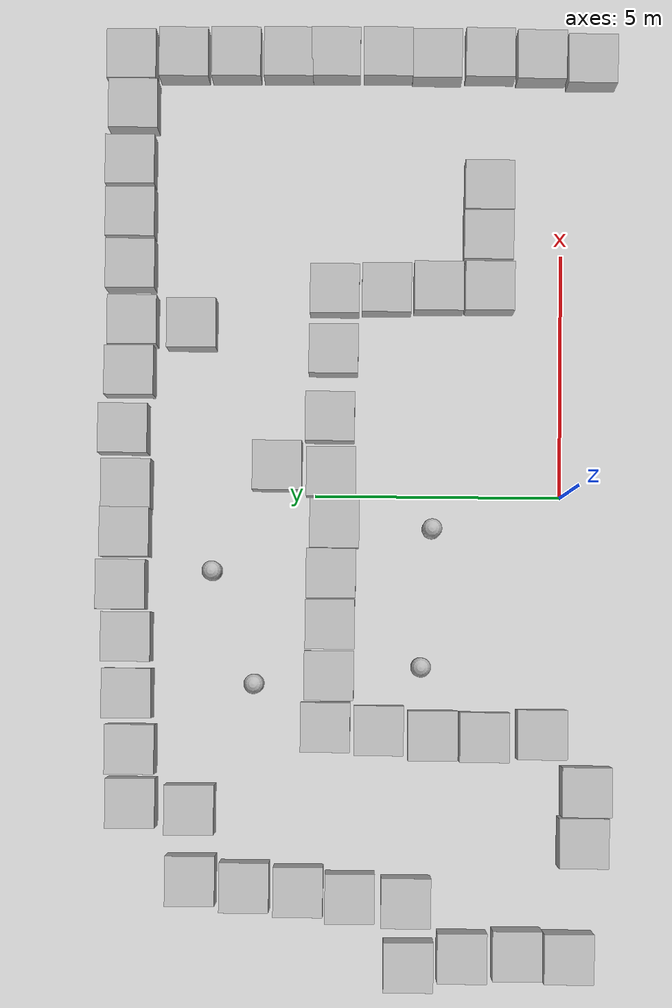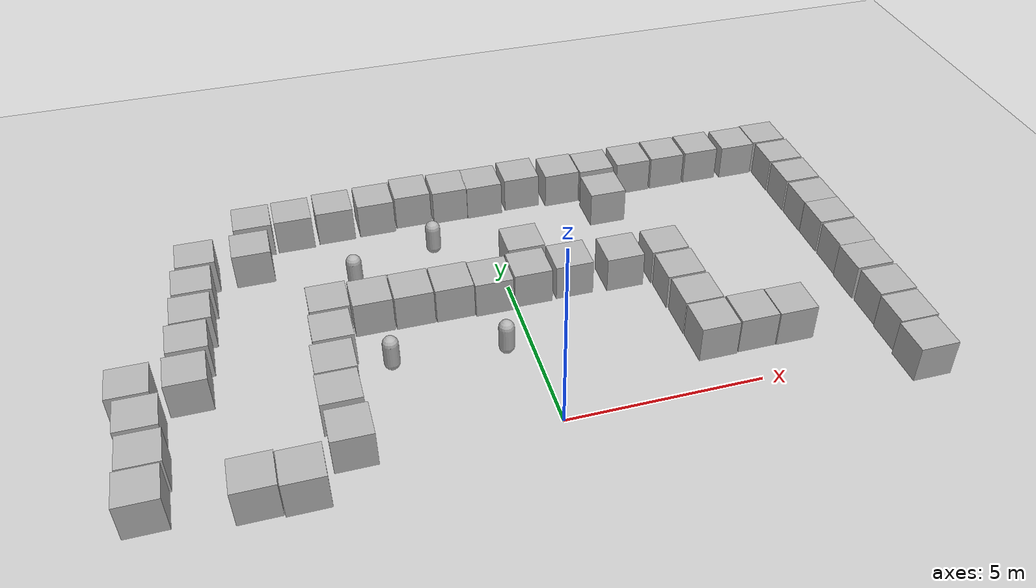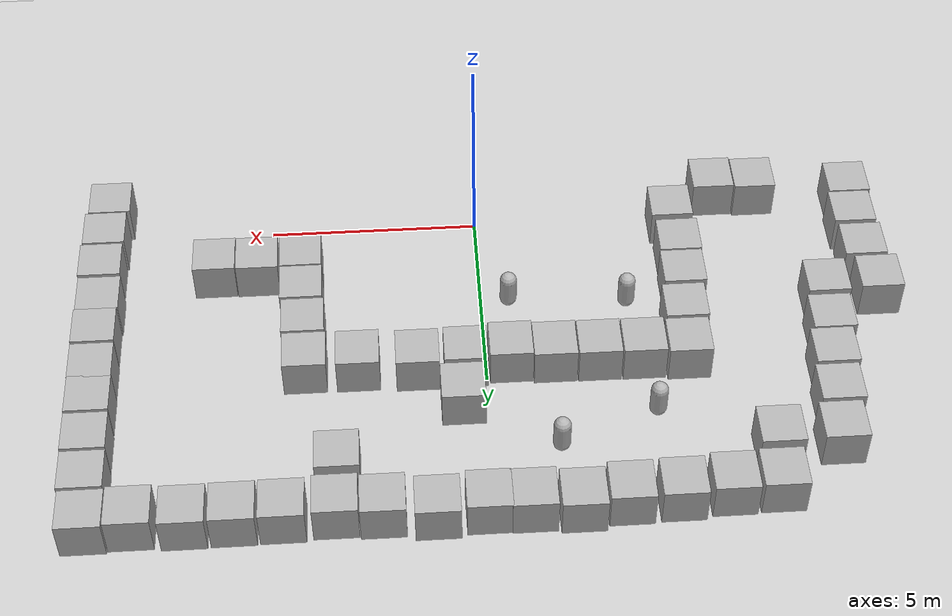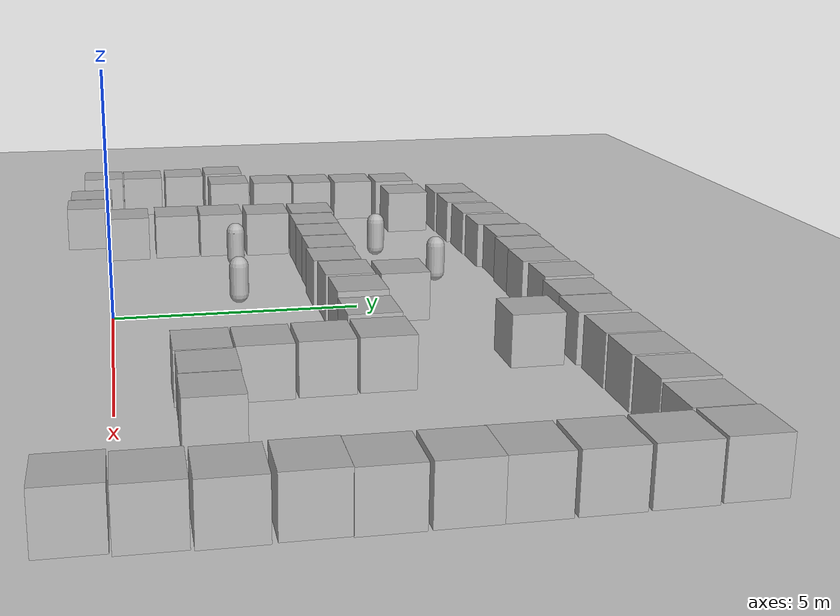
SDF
<sdf version="1.9">
 <world name="empty">
  <model name="ground_plane">
   <static>true</static>
   <link name="link">
    <collision name="collision">
     <geometry><plane><normal>0 0 1</normal><size>100 100</size></plane></geometry>
    </collision>
    <visual name="visual">
     <geometry><plane><normal>0 0 1</normal><size>100 100</size></plane></geometry>
     <material>
      <ambient>0.8 0.8 0.8 1</ambient>
      <diffuse>0.8 0.8 0.8 1</diffuse>
      <specular>0.8 0.8 0.8 1</specular>
     </material>
    </visual>
    <inertial>
     <mass>1</mass>
     <inertia><ixx>1</ixx><ixy>0</ixy><ixz>0</ixz><iyy>1</iyy><iyz>0</iyz><izz>1</izz></inertia>
    </inertial>
   </link>
  </model>
  <model name="box">
   <pose>4.25716 2.52176 0.5 0 -0 0</pose>
   <link name="box_link">
    <inertial>
     <inertia><ixx>0.16666</ixx><ixy>0</ixy><ixz>0</ixz><iyy>0.16666</iyy><iyz>0</iyz><izz>0.16666</izz></inertia>
     <mass>1</mass>
    </inertial>
    <collision name="box_collision"><geometry><box><size>1 1 1</size></box></geometry></collision>
    <visual name="box_visual">
     <geometry><box><size>1 1 1</size></box></geometry>
     <material>
      <ambient>0.3 0.3 0.3 1</ambient>
      <diffuse>0.7 0.7 0.7 1</diffuse>
      <specular>1 1 1 1</specular>
     </material>
    </visual>
   </link>
   <static>false</static>
  </model>
  <model name="box_0">
   <pose>4.26721 1.48635 0.5 0 -0 0</pose>
   <link name="box_link">
    <inertial>
     <inertia><ixx>0.16666</ixx><ixy>0</ixy><ixz>0</ixz><iyy>0.16666</iyy><iyz>0</iyz><izz>0.16666</izz></inertia>
     <mass>1</mass>
    </inertial>
    <collision name="box_collision"><geometry><box><size>1 1 1</size></box></geometry></collision>
    <visual name="box_visual">
     <geometry><box><size>1 1 1</size></box></geometry>
     <material>
      <ambient>0.3 0.3 0.3 1</ambient>
      <diffuse>0.7 0.7 0.7 1</diffuse>
      <specular>1 1 1 1</specular>
     </material>
    </visual>
   </link>
   <static>false</static>
  </model>
  <model name="box_1">
   <pose>5.31038 1.51759 0.5 0 -0 0</pose>
   <link name="box_link">
    <inertial>
     <inertia><ixx>0.16666</ixx><ixy>0</ixy><ixz>0</ixz><iyy>0.16666</iyy><iyz>0</iyz><izz>0.16666</izz></inertia>
     <mass>1</mass>
    </inertial>
    <collision name="box_collision"><geometry><box><size>1 1 1</size></box></geometry></collision>
    <visual name="box_visual">
     <geometry><box><size>1 1 1</size></box></geometry>
     <material>
      <ambient>0.3 0.3 0.3 1</ambient>
      <diffuse>0.7 0.7 0.7 1</diffuse>
      <specular>1 1 1 1</specular>
     </material>
    </visual>
   </link>
   <static>false</static>
  </model>
  <model name="box_9">
   <pose>4.21655 3.58199 0.5 0 -0 0</pose>
   <link name="box_link">
    <inertial>
     <inertia><ixx>0.16666</ixx><ixy>0</ixy><ixz>0</ixz><iyy>0.16666</iyy><iyz>0</iyz><izz>0.16666</izz></inertia>
     <mass>1</mass>
    </inertial>
    <collision name="box_collision"><geometry><box><size>1 1 1</size></box></geometry></collision>
    <visual name="box_visual">
     <geometry><box><size>1 1 1</size></box></geometry>
     <material>
      <ambient>0.3 0.3 0.3 1</ambient>
      <diffuse>0.7 0.7 0.7 1</diffuse>
      <specular>1 1 1 1</specular>
     </material>
    </visual>
   </link>
   <static>false</static>
  </model>
  <model name="box_10">
   <pose>4.18778 4.6375 0.5 0 -0 0</pose>
   <link name="box_link">
    <inertial>
     <inertia><ixx>0.16666</ixx><ixy>0</ixy><ixz>0</ixz><iyy>0.16666</iyy><iyz>0</iyz><izz>0.16666</izz></inertia>
     <mass>1</mass>
    </inertial>
    <collision name="box_collision"><geometry><box><size>1 1 1</size></box></geometry></collision>
    <visual name="box_visual">
     <geometry><box><size>1 1 1</size></box></geometry>
     <material>
      <ambient>0.3 0.3 0.3 1</ambient>
      <diffuse>0.7 0.7 0.7 1</diffuse>
      <specular>1 1 1 1</specular>
     </material>
    </visual>
   </link>
   <static>false</static>
  </model>
  <model name="box_11">
   <pose>2.96363 4.6518 0.5 0 -0 0</pose>
   <link name="box_link">
    <inertial>
     <inertia><ixx>0.16666</ixx><ixy>0</ixy><ixz>0</ixz><iyy>0.16666</iyy><iyz>0</iyz><izz>0.16666</izz></inertia>
     <mass>1</mass>
    </inertial>
    <collision name="box_collision"><geometry><box><size>1 1 1</size></box></geometry></collision>
    <visual name="box_visual">
     <geometry><box><size>1 1 1</size></box></geometry>
     <material>
      <ambient>0.3 0.3 0.3 1</ambient>
      <diffuse>0.7 0.7 0.7 1</diffuse>
      <specular>1 1 1 1</specular>
     </material>
    </visual>
   </link>
   <static>false</static>
  </model>
  <model name="box_12">
   <pose>1.59067 4.71205 0.5 0 -0 0</pose>
   <link name="box_link">
    <inertial>
     <inertia><ixx>0.16666</ixx><ixy>0</ixy><ixz>0</ixz><iyy>0.16666</iyy><iyz>0</iyz><izz>0.16666</izz></inertia>
     <mass>1</mass>
    </inertial>
    <collision name="box_collision"><geometry><box><size>1 1 1</size></box></geometry></collision>
    <visual name="box_visual">
     <geometry><box><size>1 1 1</size></box></geometry>
     <material>
      <ambient>0.3 0.3 0.3 1</ambient>
      <diffuse>0.7 0.7 0.7 1</diffuse>
      <specular>1 1 1 1</specular>
     </material>
    </visual>
   </link>
   <static>false</static>
  </model>
  <model name="box_13">
   <pose>0.474826 4.68056 0.5 0 -0 0</pose>
   <link name="box_link">
    <inertial>
     <inertia><ixx>0.16666</ixx><ixy>0</ixy><ixz>0</ixz><iyy>0.16666</iyy><iyz>0</iyz><izz>0.16666</izz></inertia>
     <mass>1</mass>
    </inertial>
    <collision name="box_collision"><geometry><box><size>1 1 1</size></box></geometry></collision>
    <visual name="box_visual">
     <geometry><box><size>1 1 1</size></box></geometry>
     <material>
      <ambient>0.3 0.3 0.3 1</ambient>
      <diffuse>0.7 0.7 0.7 1</diffuse>
      <specular>1 1 1 1</specular>
     </material>
    </visual>
   </link>
   <static>false</static>
  </model>
  <model name="box_14">
   <pose>-0.571616 4.60503 0.5 0 -0 0</pose>
   <link name="box_link">
    <inertial>
     <inertia><ixx>0.16666</ixx><ixy>0</ixy><ixz>0</ixz><iyy>0.16666</iyy><iyz>0</iyz><izz>0.16666</izz></inertia>
     <mass>1</mass>
    </inertial>
    <collision name="box_collision"><geometry><box><size>1 1 1</size></box></geometry></collision>
    <visual name="box_visual">
     <geometry><box><size>1 1 1</size></box></geometry>
     <material>
      <ambient>0.3 0.3 0.3 1</ambient>
      <diffuse>0.7 0.7 0.7 1</diffuse>
      <specular>1 1 1 1</specular>
     </material>
    </visual>
   </link>
   <static>false</static>
  </model>
  <model name="box_15">
   <pose>-1.58468 4.66608 0.5 0 -0 0</pose>
   <link name="box_link">
    <inertial>
     <inertia><ixx>0.16666</ixx><ixy>0</ixy><ixz>0</ixz><iyy>0.16666</iyy><iyz>0</iyz><izz>0.16666</izz></inertia>
     <mass>1</mass>
    </inertial>
    <collision name="box_collision"><geometry><box><size>1 1 1</size></box></geometry></collision>
    <visual name="box_visual">
     <geometry><box><size>1 1 1</size></box></geometry>
     <material>
      <ambient>0.3 0.3 0.3 1</ambient>
      <diffuse>0.7 0.7 0.7 1</diffuse>
      <specular>1 1 1 1</specular>
     </material>
    </visual>
   </link>
   <static>false</static>
  </model>
  <model name="box_16">
   <pose>-2.61521 4.67735 0.5 0 -0 0</pose>
   <link name="box_link">
    <inertial>
     <inertia><ixx>0.16666</ixx><ixy>0</ixy><ixz>0</ixz><iyy>0.16666</iyy><iyz>0</iyz><izz>0.16666</izz></inertia>
     <mass>1</mass>
    </inertial>
    <collision name="box_collision"><geometry><box><size>1 1 1</size></box></geometry></collision>
    <visual name="box_visual">
     <geometry><box><size>1 1 1</size></box></geometry>
     <material>
      <ambient>0.3 0.3 0.3 1</ambient>
      <diffuse>0.7 0.7 0.7 1</diffuse>
      <specular>1 1 1 1</specular>
     </material>
    </visual>
   </link>
   <static>false</static>
  </model>
  <model name="box_17">
   <pose>-3.64818 4.6887 0.5 0 -0 0</pose>
   <link name="box_link">
    <inertial>
     <inertia><ixx>0.16666</ixx><ixy>0</ixy><ixz>0</ixz><iyy>0.16666</iyy><iyz>0</iyz><izz>0.16666</izz></inertia>
     <mass>1</mass>
    </inertial>
    <collision name="box_collision"><geometry><box><size>1 1 1</size></box></geometry></collision>
    <visual name="box_visual">
     <geometry><box><size>1 1 1</size></box></geometry>
     <material>
      <ambient>0.3 0.3 0.3 1</ambient>
      <diffuse>0.7 0.7 0.7 1</diffuse>
      <specular>1 1 1 1</specular>
     </material>
    </visual>
   </link>
   <static>false</static>
  </model>
  <model name="box_18">
   <pose>-4.69033 4.75286 0.5 0 -0 0</pose>
   <link name="box_link">
    <inertial>
     <inertia><ixx>0.16666</ixx><ixy>0</ixy><ixz>0</ixz><iyy>0.16666</iyy><iyz>0</iyz><izz>0.16666</izz></inertia>
     <mass>1</mass>
    </inertial>
    <collision name="box_collision"><geometry><box><size>1 1 1</size></box></geometry></collision>
    <visual name="box_visual">
     <geometry><box><size>1 1 1</size></box></geometry>
     <material>
      <ambient>0.3 0.3 0.3 1</ambient>
      <diffuse>0.7 0.7 0.7 1</diffuse>
      <specular>1 1 1 1</specular>
     </material>
    </visual>
   </link>
   <static>false</static>
  </model>
  <model name="box_19">
   <pose>-4.74822 3.67565 0.5 0 -0 0</pose>
   <link name="box_link">
    <inertial>
     <inertia><ixx>0.16666</ixx><ixy>0</ixy><ixz>0</ixz><iyy>0.16666</iyy><iyz>0</iyz><izz>0.16666</izz></inertia>
     <mass>1</mass>
    </inertial>
    <collision name="box_collision"><geometry><box><size>1 1 1</size></box></geometry></collision>
    <visual name="box_visual">
     <geometry><box><size>1 1 1</size></box></geometry>
     <material>
      <ambient>0.3 0.3 0.3 1</ambient>
      <diffuse>0.7 0.7 0.7 1</diffuse>
      <specular>1 1 1 1</specular>
     </material>
    </visual>
   </link>
   <static>false</static>
  </model>
  <model name="box_20">
   <pose>-4.84161 2.58379 0.5 0 -0 0</pose>
   <link name="box_link">
    <inertial>
     <inertia><ixx>0.16666</ixx><ixy>0</ixy><ixz>0</ixz><iyy>0.16666</iyy><iyz>0</iyz><izz>0.16666</izz></inertia>
     <mass>1</mass>
    </inertial>
    <collision name="box_collision"><geometry><box><size>1 1 1</size></box></geometry></collision>
    <visual name="box_visual">
     <geometry><box><size>1 1 1</size></box></geometry>
     <material>
      <ambient>0.3 0.3 0.3 1</ambient>
      <diffuse>0.7 0.7 0.7 1</diffuse>
      <specular>1 1 1 1</specular>
     </material>
    </visual>
   </link>
   <static>false</static>
  </model>
  <model name="box_21">
   <pose>-4.86638 1.5426 0.5 0 -0 0</pose>
   <link name="box_link">
    <inertial>
     <inertia><ixx>0.16666</ixx><ixy>0</ixy><ixz>0</ixz><iyy>0.16666</iyy><iyz>0</iyz><izz>0.16666</izz></inertia>
     <mass>1</mass>
    </inertial>
    <collision name="box_collision"><geometry><box><size>1 1 1</size></box></geometry></collision>
    <visual name="box_visual">
     <geometry><box><size>1 1 1</size></box></geometry>
     <material>
      <ambient>0.3 0.3 0.3 1</ambient>
      <diffuse>0.7 0.7 0.7 1</diffuse>
      <specular>1 1 1 1</specular>
     </material>
    </visual>
   </link>
   <static>false</static>
  </model>
  <model name="box_22">
   <pose>-4.80389 0.380437 0.5 0 -0 0</pose>
   <link name="box_link">
    <inertial>
     <inertia><ixx>0.16666</ixx><ixy>0</ixy><ixz>0</ixz><iyy>0.16666</iyy><iyz>0</iyz><izz>0.16666</izz></inertia>
     <mass>1</mass>
    </inertial>
    <collision name="box_collision"><geometry><box><size>1 1 1</size></box></geometry></collision>
    <visual name="box_visual">
     <geometry><box><size>1 1 1</size></box></geometry>
     <material>
      <ambient>0.3 0.3 0.3 1</ambient>
      <diffuse>0.7 0.7 0.7 1</diffuse>
      <specular>1 1 1 1</specular>
     </material>
    </visual>
   </link>
   <static>false</static>
  </model>
  <model name="capsule">
   <pose>-3.47132 2.83157 0.5 0 -0 0</pose>
   <link name="capsule_link">
    <inertial>
     <inertia>
      <ixx>0.074153999999999998</ixx>
      <ixy>0</ixy>
      <ixz>0</ixz>
      <iyy>0.074153999999999998</iyy>
      <iyz>0</iyz>
      <izz>0.018769000000000001</izz>
     </inertia>
     <mass>1</mass>
    </inertial>
    <collision name="capsule_collision">
     <geometry>
      <capsule><radius>0.20000000000000001</radius><length>0.59999999999999998</length></capsule>
     </geometry>
    </collision>
    <visual name="capsule_visual">
     <geometry>
      <capsule><radius>0.20000000000000001</radius><length>0.59999999999999998</length></capsule>
     </geometry>
     <material>
      <ambient>0.3 0.3 0.3 1</ambient>
      <diffuse>0.7 0.7 0.7 1</diffuse>
      <specular>1 1 1 1</specular>
     </material>
    </visual>
   </link>
   <static>false</static>
  </model>
  <model name="capsule_0">
   <pose>-0.659767 2.62353 0.5 0 -0 0</pose>
   <link name="capsule_link">
    <inertial>
     <inertia>
      <ixx>0.074153999999999998</ixx>
      <ixy>0</ixy>
      <ixz>0</ixz>
      <iyy>0.074153999999999998</iyy>
      <iyz>0</iyz>
      <izz>0.018769000000000001</izz>
     </inertia>
     <mass>1</mass>
    </inertial>
    <collision name="capsule_collision">
     <geometry>
      <capsule><radius>0.20000000000000001</radius><length>0.59999999999999998</length></capsule>
     </geometry>
    </collision>
    <visual name="capsule_visual">
     <geometry>
      <capsule><radius>0.20000000000000001</radius><length>0.59999999999999998</length></capsule>
     </geometry>
     <material>
      <ambient>0.3 0.3 0.3 1</ambient>
      <diffuse>0.7 0.7 0.7 1</diffuse>
      <specular>1 1 1 1</specular>
     </material>
    </visual>
   </link>
   <static>false</static>
  </model>
  <model name="box_43">
   <pose>6.32956 1.50082 0.5 0 -0 0</pose>
   <link name="box_link">
    <inertial>
     <inertia><ixx>0.16666</ixx><ixy>0</ixy><ixz>0</ixz><iyy>0.16666</iyy><iyz>0</iyz><izz>0.16666</izz></inertia>
     <mass>1</mass>
    </inertial>
    <collision name="box_collision"><geometry><box><size>1 1 1</size></box></geometry></collision>
    <visual name="box_visual">
     <geometry><box><size>1 1 1</size></box></geometry>
     <material>
      <ambient>0.3 0.3 0.3 1</ambient>
      <diffuse>0.7 0.7 0.7 1</diffuse>
      <specular>1 1 1 1</specular>
     </material>
    </visual>
   </link>
   <static>false</static>
  </model>
  <model name="box_44">
   <pose>9.03736 1.50336 0.5 0 -0 0</pose>
   <link name="box_link">
    <inertial>
     <inertia><ixx>0.16666</ixx><ixy>0</ixy><ixz>0</ixz><iyy>0.16666</iyy><iyz>0</iyz><izz>0.16666</izz></inertia>
     <mass>1</mass>
    </inertial>
    <collision name="box_collision"><geometry><box><size>1 1 1</size></box></geometry></collision>
    <visual name="box_visual">
     <geometry><box><size>1 1 1</size></box></geometry>
     <material>
      <ambient>0.3 0.3 0.3 1</ambient>
      <diffuse>0.7 0.7 0.7 1</diffuse>
      <specular>1 1 1 1</specular>
     </material>
    </visual>
   </link>
   <static>false</static>
  </model>
  <model name="box_45">
   <pose>9.00561 0.452602 0.5 0 -0 0</pose>
   <link name="box_link">
    <inertial>
     <inertia><ixx>0.16666</ixx><ixy>0</ixy><ixz>0</ixz><iyy>0.16666</iyy><iyz>0</iyz><izz>0.16666</izz></inertia>
     <mass>1</mass>
    </inertial>
    <collision name="box_collision"><geometry><box><size>1 1 1</size></box></geometry></collision>
    <visual name="box_visual">
     <geometry><box><size>1 1 1</size></box></geometry>
     <material>
      <ambient>0.3 0.3 0.3 1</ambient>
      <diffuse>0.7 0.7 0.7 1</diffuse>
      <specular>1 1 1 1</specular>
     </material>
    </visual>
   </link>
   <static>false</static>
  </model>
  <model name="box_46">
   <pose>8.93019 -0.580131 0.5 0 -0 0</pose>
   <link name="box_link">
    <inertial>
     <inertia><ixx>0.16666</ixx><ixy>0</ixy><ixz>0</ixz><iyy>0.16666</iyy><iyz>0</iyz><izz>0.16666</izz></inertia>
     <mass>1</mass>
    </inertial>
    <collision name="box_collision"><geometry><box><size>1 1 1</size></box></geometry></collision>
    <visual name="box_visual">
     <geometry><box><size>1 1 1</size></box></geometry>
     <material>
      <ambient>0.3 0.3 0.3 1</ambient>
      <diffuse>0.7 0.7 0.7 1</diffuse>
      <specular>1 1 1 1</specular>
     </material>
    </visual>
   </link>
   <static>false</static>
  </model>
  <model name="box_61">
   <pose>9.01008 2.58616 0.5 0 -0 0</pose>
   <link name="box_link">
    <inertial>
     <inertia><ixx>0.16666</ixx><ixy>0</ixy><ixz>0</ixz><iyy>0.16666</iyy><iyz>0</iyz><izz>0.16666</izz></inertia>
     <mass>1</mass>
    </inertial>
    <collision name="box_collision"><geometry><box><size>1 1 1</size></box></geometry></collision>
    <visual name="box_visual">
     <geometry><box><size>1 1 1</size></box></geometry>
     <material>
      <ambient>0.3 0.3 0.3 1</ambient>
      <diffuse>0.7 0.7 0.7 1</diffuse>
      <specular>1 1 1 1</specular>
     </material>
    </visual>
   </link>
   <static>false</static>
  </model>
  <model name="box_62">
   <pose>9.03702 3.58685 0.5 0 -0 0</pose>
   <link name="box_link">
    <inertial>
     <inertia><ixx>0.16666</ixx><ixy>0</ixy><ixz>0</ixz><iyy>0.16666</iyy><iyz>0</iyz><izz>0.16666</izz></inertia>
     <mass>1</mass>
    </inertial>
    <collision name="box_collision"><geometry><box><size>1 1 1</size></box></geometry></collision>
    <visual name="box_visual">
     <geometry><box><size>1 1 1</size></box></geometry>
     <material>
      <ambient>0.3 0.3 0.3 1</ambient>
      <diffuse>0.7 0.7 0.7 1</diffuse>
      <specular>1 1 1 1</specular>
     </material>
    </visual>
   </link>
   <static>false</static>
  </model>
  <model name="box_63">
   <pose>9.02821 4.65342 0.5 0 -0 0</pose>
   <link name="box_link">
    <inertial>
     <inertia><ixx>0.16666</ixx><ixy>0</ixy><ixz>0</ixz><iyy>0.16666</iyy><iyz>0</iyz><izz>0.16666</izz></inertia>
     <mass>1</mass>
    </inertial>
    <collision name="box_collision"><geometry><box><size>1 1 1</size></box></geometry></collision>
    <visual name="box_visual">
     <geometry><box><size>1 1 1</size></box></geometry>
     <material>
      <ambient>0.3 0.3 0.3 1</ambient>
      <diffuse>0.7 0.7 0.7 1</diffuse>
      <specular>1 1 1 1</specular>
     </material>
    </visual>
   </link>
   <static>false</static>
  </model>
  <model name="box_64">
   <pose>9.02067 5.62018 0.5 0 -0 0</pose>
   <link name="box_link">
    <inertial>
     <inertia><ixx>0.16666</ixx><ixy>0</ixy><ixz>0</ixz><iyy>0.16666</iyy><iyz>0</iyz><izz>0.16666</izz></inertia>
     <mass>1</mass>
    </inertial>
    <collision name="box_collision"><geometry><box><size>1 1 1</size></box></geometry></collision>
    <visual name="box_visual">
     <geometry><box><size>1 1 1</size></box></geometry>
     <material>
      <ambient>0.3 0.3 0.3 1</ambient>
      <diffuse>0.7 0.7 0.7 1</diffuse>
      <specular>1 1 1 1</specular>
     </material>
    </visual>
   </link>
   <static>false</static>
  </model>
  <model name="box_65">
   <pose>9.01187 6.6869 0.5 0 -0 0</pose>
   <link name="box_link">
    <inertial>
     <inertia><ixx>0.16666</ixx><ixy>0</ixy><ixz>0</ixz><iyy>0.16666</iyy><iyz>0</iyz><izz>0.16666</izz></inertia>
     <mass>1</mass>
    </inertial>
    <collision name="box_collision"><geometry><box><size>1 1 1</size></box></geometry></collision>
    <visual name="box_visual">
     <geometry><box><size>1 1 1</size></box></geometry>
     <material>
      <ambient>0.3 0.3 0.3 1</ambient>
      <diffuse>0.7 0.7 0.7 1</diffuse>
      <specular>1 1 1 1</specular>
     </material>
    </visual>
   </link>
   <static>false</static>
  </model>
  <model name="box_66">
   <pose>8.99877 7.753 0.5 0 -0 0</pose>
   <link name="box_link">
    <inertial>
     <inertia><ixx>0.16666</ixx><ixy>0</ixy><ixz>0</ixz><iyy>0.16666</iyy><iyz>0</iyz><izz>0.16666</izz></inertia>
     <mass>1</mass>
    </inertial>
    <collision name="box_collision"><geometry><box><size>1 1 1</size></box></geometry></collision>
    <visual name="box_visual">
     <geometry><box><size>1 1 1</size></box></geometry>
     <material>
      <ambient>0.3 0.3 0.3 1</ambient>
      <diffuse>0.7 0.7 0.7 1</diffuse>
      <specular>1 1 1 1</specular>
     </material>
    </visual>
   </link>
   <static>false</static>
  </model>
  <model name="box_67">
   <pose>8.95612 8.81775 0.5 0 -0 0</pose>
   <link name="box_link">
    <inertial>
     <inertia><ixx>0.16666</ixx><ixy>0</ixy><ixz>0</ixz><iyy>0.16666</iyy><iyz>0</iyz><izz>0.16666</izz></inertia>
     <mass>1</mass>
    </inertial>
    <collision name="box_collision"><geometry><box><size>1 1 1</size></box></geometry></collision>
    <visual name="box_visual">
     <geometry><box><size>1 1 1</size></box></geometry>
     <material>
      <ambient>0.3 0.3 0.3 1</ambient>
      <diffuse>0.7 0.7 0.7 1</diffuse>
      <specular>1 1 1 1</specular>
     </material>
    </visual>
   </link>
   <static>false</static>
  </model>
  <model name="box_68">
   <pose>7.93629 8.77352 0.5 0 -0 0</pose>
   <link name="box_link">
    <inertial>
     <inertia><ixx>0.16666</ixx><ixy>0</ixy><ixz>0</ixz><iyy>0.16666</iyy><iyz>0</iyz><izz>0.16666</izz></inertia>
     <mass>1</mass>
    </inertial>
    <collision name="box_collision"><geometry><box><size>1 1 1</size></box></geometry></collision>
    <visual name="box_visual">
     <geometry><box><size>1 1 1</size></box></geometry>
     <material>
      <ambient>0.3 0.3 0.3 1</ambient>
      <diffuse>0.7 0.7 0.7 1</diffuse>
      <specular>1 1 1 1</specular>
     </material>
    </visual>
   </link>
   <static>false</static>
  </model>
  <model name="box_69">
   <pose>6.79037 8.82292 0.5 0 -0 0</pose>
   <link name="box_link">
    <inertial>
     <inertia><ixx>0.16666</ixx><ixy>0</ixy><ixz>0</ixz><iyy>0.16666</iyy><iyz>0</iyz><izz>0.16666</izz></inertia>
     <mass>1</mass>
    </inertial>
    <collision name="box_collision"><geometry><box><size>1 1 1</size></box></geometry></collision>
    <visual name="box_visual">
     <geometry><box><size>1 1 1</size></box></geometry>
     <material>
      <ambient>0.3 0.3 0.3 1</ambient>
      <diffuse>0.7 0.7 0.7 1</diffuse>
      <specular>1 1 1 1</specular>
     </material>
    </visual>
   </link>
   <static>false</static>
  </model>
  <model name="box_70">
   <pose>5.72243 8.80826 0.5 0 -0 0</pose>
   <link name="box_link">
    <inertial>
     <inertia><ixx>0.16666</ixx><ixy>0</ixy><ixz>0</ixz><iyy>0.16666</iyy><iyz>0</iyz><izz>0.16666</izz></inertia>
     <mass>1</mass>
    </inertial>
    <collision name="box_collision"><geometry><box><size>1 1 1</size></box></geometry></collision>
    <visual name="box_visual">
     <geometry><box><size>1 1 1</size></box></geometry>
     <material>
      <ambient>0.3 0.3 0.3 1</ambient>
      <diffuse>0.7 0.7 0.7 1</diffuse>
      <specular>1 1 1 1</specular>
     </material>
    </visual>
   </link>
   <static>false</static>
  </model>
  <model name="box_71">
   <pose>4.66457 8.7943 0.5 0 -0 0</pose>
   <link name="box_link">
    <inertial>
     <inertia><ixx>0.16666</ixx><ixy>0</ixy><ixz>0</ixz><iyy>0.16666</iyy><iyz>0</iyz><izz>0.16666</izz></inertia>
     <mass>1</mass>
    </inertial>
    <collision name="box_collision"><geometry><box><size>1 1 1</size></box></geometry></collision>
    <visual name="box_visual">
     <geometry><box><size>1 1 1</size></box></geometry>
     <material>
      <ambient>0.3 0.3 0.3 1</ambient>
      <diffuse>0.7 0.7 0.7 1</diffuse>
      <specular>1 1 1 1</specular>
     </material>
    </visual>
   </link>
   <static>false</static>
  </model>
  <model name="box_72">
   <pose>3.52038 8.74432 0.5 0 -0 0</pose>
   <link name="box_link">
    <inertial>
     <inertia><ixx>0.16666</ixx><ixy>0</ixy><ixz>0</ixz><iyy>0.16666</iyy><iyz>0</iyz><izz>0.16666</izz></inertia>
     <mass>1</mass>
    </inertial>
    <collision name="box_collision"><geometry><box><size>1 1 1</size></box></geometry></collision>
    <visual name="box_visual">
     <geometry><box><size>1 1 1</size></box></geometry>
     <material>
      <ambient>0.3 0.3 0.3 1</ambient>
      <diffuse>0.7 0.7 0.7 1</diffuse>
      <specular>1 1 1 1</specular>
     </material>
    </visual>
   </link>
   <static>false</static>
  </model>
  <model name="box_73">
   <pose>3.46478 7.53897 0.5 0 -0 0</pose>
   <link name="box_link">
    <inertial>
     <inertia><ixx>0.16666</ixx><ixy>0</ixy><ixz>0</ixz><iyy>0.16666</iyy><iyz>0</iyz><izz>0.16666</izz></inertia>
     <mass>1</mass>
    </inertial>
    <collision name="box_collision"><geometry><box><size>1 1 1</size></box></geometry></collision>
    <visual name="box_visual">
     <geometry><box><size>1 1 1</size></box></geometry>
     <material>
      <ambient>0.3 0.3 0.3 1</ambient>
      <diffuse>0.7 0.7 0.7 1</diffuse>
      <specular>1 1 1 1</specular>
     </material>
    </visual>
   </link>
   <static>false</static>
  </model>
  <model name="box_74">
   <pose>2.49485 8.79425 0.5 0 -0 0</pose>
   <link name="box_link">
    <inertial>
     <inertia><ixx>0.16666</ixx><ixy>0</ixy><ixz>0</ixz><iyy>0.16666</iyy><iyz>0</iyz><izz>0.16666</izz></inertia>
     <mass>1</mass>
    </inertial>
    <collision name="box_collision"><geometry><box><size>1 1 1</size></box></geometry></collision>
    <visual name="box_visual">
     <geometry><box><size>1 1 1</size></box></geometry>
     <material>
      <ambient>0.3 0.3 0.3 1</ambient>
      <diffuse>0.7 0.7 0.7 1</diffuse>
      <specular>1 1 1 1</specular>
     </material>
    </visual>
   </link>
   <static>false</static>
  </model>
  <model name="box_75">
   <pose>1.31724 8.90426 0.5 0 -0 0</pose>
   <link name="box_link">
    <inertial>
     <inertia><ixx>0.16666</ixx><ixy>0</ixy><ixz>0</ixz><iyy>0.16666</iyy><iyz>0</iyz><izz>0.16666</izz></inertia>
     <mass>1</mass>
    </inertial>
    <collision name="box_collision"><geometry><box><size>1 1 1</size></box></geometry></collision>
    <visual name="box_visual">
     <geometry><box><size>1 1 1</size></box></geometry>
     <material>
      <ambient>0.3 0.3 0.3 1</ambient>
      <diffuse>0.7 0.7 0.7 1</diffuse>
      <specular>1 1 1 1</specular>
     </material>
    </visual>
   </link>
   <static>false</static>
  </model>
  <model name="box_76">
   <pose>0.592566 5.7751 0.5 0 -0 0</pose>
   <link name="box_link">
    <inertial>
     <inertia><ixx>0.16666</ixx><ixy>0</ixy><ixz>0</ixz><iyy>0.16666</iyy><iyz>0</iyz><izz>0.16666</izz></inertia>
     <mass>1</mass>
    </inertial>
    <collision name="box_collision"><geometry><box><size>1 1 1</size></box></geometry></collision>
    <visual name="box_visual">
     <geometry><box><size>1 1 1</size></box></geometry>
     <material>
      <ambient>0.3 0.3 0.3 1</ambient>
      <diffuse>0.7 0.7 0.7 1</diffuse>
      <specular>1 1 1 1</specular>
     </material>
    </visual>
   </link>
   <static>false</static>
  </model>
  <model name="box_77">
   <pose>0.195458 8.82739 0.5 0 -0 0</pose>
   <link name="box_link">
    <inertial>
     <inertia><ixx>0.16666</ixx><ixy>0</ixy><ixz>0</ixz><iyy>0.16666</iyy><iyz>0</iyz><izz>0.16666</izz></inertia>
     <mass>1</mass>
    </inertial>
    <collision name="box_collision"><geometry><box><size>1 1 1</size></box></geometry></collision>
    <visual name="box_visual">
     <geometry><box><size>1 1 1</size></box></geometry>
     <material>
      <ambient>0.3 0.3 0.3 1</ambient>
      <diffuse>0.7 0.7 0.7 1</diffuse>
      <specular>1 1 1 1</specular>
     </material>
    </visual>
   </link>
   <static>false</static>
  </model>
  <model name="box_78">
   <pose>-0.780335 8.84818 0.5 0 -0 0</pose>
   <link name="box_link">
    <inertial>
     <inertia><ixx>0.16666</ixx><ixy>0</ixy><ixz>0</ixz><iyy>0.16666</iyy><iyz>0</iyz><izz>0.16666</izz></inertia>
     <mass>1</mass>
    </inertial>
    <collision name="box_collision"><geometry><box><size>1 1 1</size></box></geometry></collision>
    <visual name="box_visual">
     <geometry><box><size>1 1 1</size></box></geometry>
     <material>
      <ambient>0.3 0.3 0.3 1</ambient>
      <diffuse>0.7 0.7 0.7 1</diffuse>
      <specular>1 1 1 1</specular>
     </material>
    </visual>
   </link>
   <static>false</static>
  </model>
  <model name="box_79">
   <pose>-1.8423 8.91244 0.5 0 -0 0</pose>
   <link name="box_link">
    <inertial>
     <inertia><ixx>0.16666</ixx><ixy>0</ixy><ixz>0</ixz><iyy>0.16666</iyy><iyz>0</iyz><izz>0.16666</izz></inertia>
     <mass>1</mass>
    </inertial>
    <collision name="box_collision"><geometry><box><size>1 1 1</size></box></geometry></collision>
    <visual name="box_visual">
     <geometry><box><size>1 1 1</size></box></geometry>
     <material>
      <ambient>0.3 0.3 0.3 1</ambient>
      <diffuse>0.7 0.7 0.7 1</diffuse>
      <specular>1 1 1 1</specular>
     </material>
    </visual>
   </link>
   <static>false</static>
  </model>
  <model name="box_80">
   <pose>-2.89637 8.79206 0.5 0 -0 0</pose>
   <link name="box_link">
    <inertial>
     <inertia><ixx>0.16666</ixx><ixy>0</ixy><ixz>0</ixz><iyy>0.16666</iyy><iyz>0</iyz><izz>0.16666</izz></inertia>
     <mass>1</mass>
    </inertial>
    <collision name="box_collision"><geometry><box><size>1 1 1</size></box></geometry></collision>
    <visual name="box_visual">
     <geometry><box><size>1 1 1</size></box></geometry>
     <material>
      <ambient>0.3 0.3 0.3 1</ambient>
      <diffuse>0.7 0.7 0.7 1</diffuse>
      <specular>1 1 1 1</specular>
     </material>
    </visual>
   </link>
   <static>false</static>
  </model>
  <model name="box_81">
   <pose>-4.03431 8.76242 0.5 0 -0 0</pose>
   <link name="box_link">
    <inertial>
     <inertia><ixx>0.16666</ixx><ixy>0</ixy><ixz>0</ixz><iyy>0.16666</iyy><iyz>0</iyz><izz>0.16666</izz></inertia>
     <mass>1</mass>
    </inertial>
    <collision name="box_collision"><geometry><box><size>1 1 1</size></box></geometry></collision>
    <visual name="box_visual">
     <geometry><box><size>1 1 1</size></box></geometry>
     <material>
      <ambient>0.3 0.3 0.3 1</ambient>
      <diffuse>0.7 0.7 0.7 1</diffuse>
      <specular>1 1 1 1</specular>
     </material>
    </visual>
   </link>
   <static>false</static>
  </model>
  <model name="box_82">
   <pose>-5.16308 8.68549 0.5 0 -0 0</pose>
   <link name="box_link">
    <inertial>
     <inertia><ixx>0.16666</ixx><ixy>0</ixy><ixz>0</ixz><iyy>0.16666</iyy><iyz>0</iyz><izz>0.16666</izz></inertia>
     <mass>1</mass>
    </inertial>
    <collision name="box_collision"><geometry><box><size>1 1 1</size></box></geometry></collision>
    <visual name="box_visual">
     <geometry><box><size>1 1 1</size></box></geometry>
     <material>
      <ambient>0.3 0.3 0.3 1</ambient>
      <diffuse>0.7 0.7 0.7 1</diffuse>
      <specular>1 1 1 1</specular>
     </material>
    </visual>
   </link>
   <static>false</static>
  </model>
  <model name="box_83">
   <pose>-6.24087 8.65752 0.5 0 -0 0</pose>
   <link name="box_link">
    <inertial>
     <inertia><ixx>0.16666</ixx><ixy>0</ixy><ixz>0</ixz><iyy>0.16666</iyy><iyz>0</iyz><izz>0.16666</izz></inertia>
     <mass>1</mass>
    </inertial>
    <collision name="box_collision"><geometry><box><size>1 1 1</size></box></geometry></collision>
    <visual name="box_visual">
     <geometry><box><size>1 1 1</size></box></geometry>
     <material>
      <ambient>0.3 0.3 0.3 1</ambient>
      <diffuse>0.7 0.7 0.7 1</diffuse>
      <specular>1 1 1 1</specular>
     </material>
    </visual>
   </link>
   <static>false</static>
  </model>
  <model name="box_84">
   <pose>-6.36597 7.47407 0.5 0 -0 0</pose>
   <link name="box_link">
    <inertial>
     <inertia><ixx>0.16666</ixx><ixy>0</ixy><ixz>0</ixz><iyy>0.16666</iyy><iyz>0</iyz><izz>0.16666</izz></inertia>
     <mass>1</mass>
    </inertial>
    <collision name="box_collision"><geometry><box><size>1 1 1</size></box></geometry></collision>
    <visual name="box_visual">
     <geometry><box><size>1 1 1</size></box></geometry>
     <material>
      <ambient>0.3 0.3 0.3 1</ambient>
      <diffuse>0.7 0.7 0.7 1</diffuse>
      <specular>1 1 1 1</specular>
     </material>
    </visual>
   </link>
   <static>false</static>
  </model>
  <model name="box_85">
   <pose>-7.78749 7.44142 0.5 0 -0 0</pose>
   <link name="box_link">
    <inertial>
     <inertia><ixx>0.16666</ixx><ixy>0</ixy><ixz>0</ixz><iyy>0.16666</iyy><iyz>0</iyz><izz>0.16666</izz></inertia>
     <mass>1</mass>
    </inertial>
    <collision name="box_collision"><geometry><box><size>1 1 1</size></box></geometry></collision>
    <visual name="box_visual">
     <geometry><box><size>1 1 1</size></box></geometry>
     <material>
      <ambient>0.3 0.3 0.3 1</ambient>
      <diffuse>0.7 0.7 0.7 1</diffuse>
      <specular>1 1 1 1</specular>
     </material>
    </visual>
   </link>
   <static>false</static>
  </model>
  <model name="box_86">
   <pose>-7.91221 6.35445 0.5 0 -0 0</pose>
   <link name="box_link">
    <inertial>
     <inertia><ixx>0.16666</ixx><ixy>0</ixy><ixz>0</ixz><iyy>0.16666</iyy><iyz>0</iyz><izz>0.16666</izz></inertia>
     <mass>1</mass>
    </inertial>
    <collision name="box_collision"><geometry><box><size>1 1 1</size></box></geometry></collision>
    <visual name="box_visual">
     <geometry><box><size>1 1 1</size></box></geometry>
     <material>
      <ambient>0.3 0.3 0.3 1</ambient>
      <diffuse>0.7 0.7 0.7 1</diffuse>
      <specular>1 1 1 1</specular>
     </material>
    </visual>
   </link>
   <static>false</static>
  </model>
  <model name="box_87">
   <pose>-7.99199 5.26958 0.5 0 -0 0</pose>
   <link name="box_link">
    <inertial>
     <inertia><ixx>0.16666</ixx><ixy>0</ixy><ixz>0</ixz><iyy>0.16666</iyy><iyz>0</iyz><izz>0.16666</izz></inertia>
     <mass>1</mass>
    </inertial>
    <collision name="box_collision"><geometry><box><size>1 1 1</size></box></geometry></collision>
    <visual name="box_visual">
     <geometry><box><size>1 1 1</size></box></geometry>
     <material>
      <ambient>0.3 0.3 0.3 1</ambient>
      <diffuse>0.7 0.7 0.7 1</diffuse>
      <specular>1 1 1 1</specular>
     </material>
    </visual>
   </link>
   <static>false</static>
  </model>
  <model name="capsule_1">
   <pose>-1.55183 7.07593 0.5 0 -0 0</pose>
   <link name="capsule_link">
    <inertial>
     <inertia>
      <ixx>0.074153999999999998</ixx>
      <ixy>0</ixy>
      <ixz>0</ixz>
      <iyy>0.074153999999999998</iyy>
      <iyz>0</iyz>
      <izz>0.018769000000000001</izz>
     </inertia>
     <mass>1</mass>
    </inertial>
    <collision name="capsule_collision">
     <geometry>
      <capsule><radius>0.20000000000000001</radius><length>0.59999999999999998</length></capsule>
     </geometry>
    </collision>
    <visual name="capsule_visual">
     <geometry>
      <capsule><radius>0.20000000000000001</radius><length>0.59999999999999998</length></capsule>
     </geometry>
     <material>
      <ambient>0.3 0.3 0.3 1</ambient>
      <diffuse>0.7 0.7 0.7 1</diffuse>
      <specular>1 1 1 1</specular>
     </material>
    </visual>
   </link>
   <static>false</static>
  </model>
  <model name="capsule_2">
   <pose>-3.83231 6.20376 0.5 0 -0 0</pose>
   <link name="capsule_link">
    <inertial>
     <inertia>
      <ixx>0.074153999999999998</ixx>
      <ixy>0</ixy>
      <ixz>0</ixz>
      <iyy>0.074153999999999998</iyy>
      <iyz>0</iyz>
      <izz>0.018769000000000001</izz>
     </inertia>
     <mass>1</mass>
    </inertial>
    <collision name="capsule_collision">
     <geometry>
      <capsule><radius>0.20000000000000001</radius><length>0.59999999999999998</length></capsule>
     </geometry>
    </collision>
    <visual name="capsule_visual">
     <geometry>
      <capsule><radius>0.20000000000000001</radius><length>0.59999999999999998</length></capsule>
     </geometry>
     <material>
      <ambient>0.3 0.3 0.3 1</ambient>
      <diffuse>0.7 0.7 0.7 1</diffuse>
      <specular>1 1 1 1</specular>
     </material>
    </visual>
   </link>
   <static>false</static>
  </model>
  <model name="box_88">
   <pose>-8.11586 4.22976 0.5 0 -0 0</pose>
   <link name="box_link">
    <inertial>
     <inertia><ixx>0.16666</ixx><ixy>0</ixy><ixz>0</ixz><iyy>0.16666</iyy><iyz>0</iyz><izz>0.16666</izz></inertia>
     <mass>1</mass>
    </inertial>
    <collision name="box_collision"><geometry><box><size>1 1 1</size></box></geometry></collision>
    <visual name="box_visual">
     <geometry><box><size>1 1 1</size></box></geometry>
     <material>
      <ambient>0.3 0.3 0.3 1</ambient>
      <diffuse>0.7 0.7 0.7 1</diffuse>
      <specular>1 1 1 1</specular>
     </material>
    </visual>
   </link>
   <static>false</static>
  </model>
  <model name="box_89">
   <pose>-8.19554 3.10101 0.5 0 -0 0</pose>
   <link name="box_link">
    <inertial>
     <inertia><ixx>0.16666</ixx><ixy>0</ixy><ixz>0</ixz><iyy>0.16666</iyy><iyz>0</iyz><izz>0.16666</izz></inertia>
     <mass>1</mass>
    </inertial>
    <collision name="box_collision"><geometry><box><size>1 1 1</size></box></geometry></collision>
    <visual name="box_visual">
     <geometry><box><size>1 1 1</size></box></geometry>
     <material>
      <ambient>0.3 0.3 0.3 1</ambient>
      <diffuse>0.7 0.7 0.7 1</diffuse>
      <specular>1 1 1 1</specular>
     </material>
    </visual>
   </link>
   <static>false</static>
  </model>
  <model name="box_90">
   <pose>-9.2868 1.96831 0.5 0 -0 0</pose>
   <link name="box_link">
    <inertial>
     <inertia><ixx>0.16666</ixx><ixy>0</ixy><ixz>0</ixz><iyy>0.16666</iyy><iyz>0</iyz><izz>0.16666</izz></inertia>
     <mass>1</mass>
    </inertial>
    <collision name="box_collision"><geometry><box><size>1 1 1</size></box></geometry></collision>
    <visual name="box_visual">
     <geometry><box><size>1 1 1</size></box></geometry>
     <material>
      <ambient>0.3 0.3 0.3 1</ambient>
      <diffuse>0.7 0.7 0.7 1</diffuse>
      <specular>1 1 1 1</specular>
     </material>
    </visual>
   </link>
   <static>false</static>
  </model>
  <model name="box_91">
   <pose>-9.47084 3.04573 0.5 0 -0 0</pose>
   <link name="box_link">
    <inertial>
     <inertia><ixx>0.16666</ixx><ixy>0</ixy><ixz>0</ixz><iyy>0.16666</iyy><iyz>0</iyz><izz>0.16666</izz></inertia>
     <mass>1</mass>
    </inertial>
    <collision name="box_collision"><geometry><box><size>1 1 1</size></box></geometry></collision>
    <visual name="box_visual">
     <geometry><box><size>1 1 1</size></box></geometry>
     <material>
      <ambient>0.3 0.3 0.3 1</ambient>
      <diffuse>0.7 0.7 0.7 1</diffuse>
      <specular>1 1 1 1</specular>
     </material>
    </visual>
   </link>
   <static>false</static>
  </model>
  <model name="box_92">
   <pose>-9.23212 0.858502 0.5 0 -0 0</pose>
   <link name="box_link">
    <inertial>
     <inertia><ixx>0.16666</ixx><ixy>0</ixy><ixz>0</ixz><iyy>0.16666</iyy><iyz>0</iyz><izz>0.16666</izz></inertia>
     <mass>1</mass>
    </inertial>
    <collision name="box_collision"><geometry><box><size>1 1 1</size></box></geometry></collision>
    <visual name="box_visual">
     <geometry><box><size>1 1 1</size></box></geometry>
     <material>
      <ambient>0.3 0.3 0.3 1</ambient>
      <diffuse>0.7 0.7 0.7 1</diffuse>
      <specular>1 1 1 1</specular>
     </material>
    </visual>
   </link>
   <static>false</static>
  </model>
  <model name="box_93">
   <pose>-5.949 -0.524411 0.5 0 -0 0</pose>
   <link name="box_link">
    <inertial>
     <inertia><ixx>0.16666</ixx><ixy>0</ixy><ixz>0</ixz><iyy>0.16666</iyy><iyz>0</iyz><izz>0.16666</izz></inertia>
     <mass>1</mass>
    </inertial>
    <collision name="box_collision"><geometry><box><size>1 1 1</size></box></geometry></collision>
    <visual name="box_visual">
     <geometry><box><size>1 1 1</size></box></geometry>
     <material>
      <ambient>0.3 0.3 0.3 1</ambient>
      <diffuse>0.7 0.7 0.7 1</diffuse>
      <specular>1 1 1 1</specular>
     </material>
    </visual>
   </link>
   <static>false</static>
  </model>
  <model name="box_94">
   <pose>-6.9717 -0.466261 0.5 0 -0 0</pose>
   <link name="box_link">
    <inertial>
     <inertia><ixx>0.16666</ixx><ixy>0</ixy><ixz>0</ixz><iyy>0.16666</iyy><iyz>0</iyz><izz>0.16666</izz></inertia>
     <mass>1</mass>
    </inertial>
    <collision name="box_collision"><geometry><box><size>1 1 1</size></box></geometry></collision>
    <visual name="box_visual">
     <geometry><box><size>1 1 1</size></box></geometry>
     <material>
      <ambient>0.3 0.3 0.3 1</ambient>
      <diffuse>0.7 0.7 0.7 1</diffuse>
      <specular>1 1 1 1</specular>
     </material>
    </visual>
   </link>
   <static>false</static>
  </model>
  <model name="box_95">
   <pose>-9.28237 -0.174956 0.5 0 -0 0</pose>
   <link name="box_link">
    <inertial>
     <inertia><ixx>0.16666</ixx><ixy>0</ixy><ixz>0</ixz><iyy>0.16666</iyy><iyz>0</iyz><izz>0.16666</izz></inertia>
     <mass>1</mass>
    </inertial>
    <collision name="box_collision"><geometry><box><size>1 1 1</size></box></geometry></collision>
    <visual name="box_visual">
     <geometry><box><size>1 1 1</size></box></geometry>
     <material>
      <ambient>0.3 0.3 0.3 1</ambient>
      <diffuse>0.7 0.7 0.7 1</diffuse>
      <specular>1 1 1 1</specular>
     </material>
    </visual>
   </link>
   <static>false</static>
  </model>
 </world>
</sdf>
